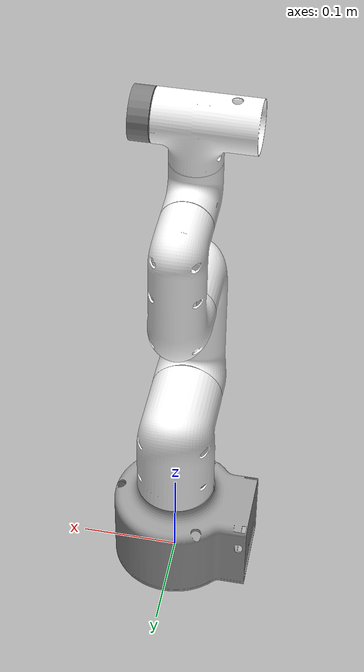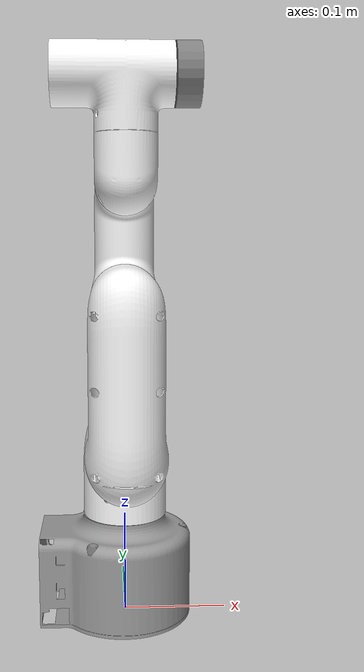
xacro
<?xml version='1.0' encoding='utf-8'?>
<robot xmlns:xacro="http://ros.org/wiki/xacro" name="mycobot_pro">
  <xacro:arg name="ros_namespace" default="mycobot_pro"/>
  <xacro:arg name="attach_to" default="world"/>

  <!-- load mycobot_pro robot -->
  <xacro:include filename="$(find mycobot_pro)/urdf/mycobot_robot_macro.xacro" />
  <xacro:mycobot_pro_robot_macro attach_to="$(arg attach_to)"/>

</robot>

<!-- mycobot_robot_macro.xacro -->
<robot xmlns:xacro="http://ros.org/wiki/xacro" name="mycobot_pro_robot" >
  <xacro:macro name="mycobot_pro_robot_macro" params="prefix:='' namespace:='xarm' limited:='false' effort_control:='false'
    velocity_control:='false' attach_to:='world' xyz:='0 0 0' rpy:='0 0 0' load_gazebo_plugin:='true' ">

    <!-- include mycobot relative macros: -->
    <xacro:include filename="$(find mycobot_pro)/urdf/320_urdf/mycobot_pro_320.xacro" />

    <!-- add one world link if no 'attach_to' specified  -->
    <xacro:if value="${attach_to == 'world'}">
      <link name="world" />
    </xacro:if>

    <joint name="world_joint" type="fixed">
      <parent link="${attach_to}" />
      <child link = "${prefix}arm_base" />
      <origin xyz="${xyz}" rpy="${rpy}" />
    </joint>

  </xacro:macro>
</robot>

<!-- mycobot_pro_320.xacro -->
<robot  xmlns:xacro="http://www.ros.org/wiki/xacro" name="mycobot_pro_robot" >

<xacro:property name="width" value=".2" />
  <link name="arm_base">
    <visual>
      <geometry>
       <mesh filename="package://mycobot_pro/urdf/320_urdf/base.dae"/>
      </geometry>
    <origin xyz = "0 0 0 " rpy = " 0 0 0"/>
    </visual>
    <collision>
      <origin xyz = "0 0 0.05 " rpy = " 0 0 0"/>
      <geometry>
        <cylinder length="0.102" radius="0.0725"/>
      </geometry>
    </collision>
  </link>

  <link name="link1">
    <visual>
      <geometry>
       <mesh filename="package://mycobot_pro/urdf/320_urdf/link1.dae"/>
      </geometry>
      <origin xyz = "0 0 0 " rpy = " 0 0 0"/>
    </visual>
    <collision>
      <origin xyz = "0 0 -0.02 " rpy = " 0 0 0"/>
      <geometry>
        <cylinder length="0.106" radius="0.043"/>
      </geometry>
    </collision>
  </link>

  <link name="link2">
    <visual>
      <geometry>
       <mesh filename="package://mycobot_pro/urdf/320_urdf/link2.dae"/>
      </geometry>
      <origin xyz = "0 0 0.0587 " rpy = " 0 0 3.1415926"/>
    </visual>
    <collision>
     <origin xyz = "0.04 0 0.095 " rpy = " 0 -1.5708 0"/>
      <geometry>
        <cylinder length="0.21" radius="0.036"/>
      </geometry>
    </collision>
  </link>

  <link name="link3">
    <visual>
      <geometry>
       <mesh filename="package://mycobot_pro/urdf/320_urdf/link3.dae"/>
      </geometry>
      <origin xyz = "0 0 0.038 " rpy = " 0 0 3.1415926"/>
    </visual>
    <collision>
      <origin xyz = "0.034 0 0 " rpy = " 0 -1.5708 0"/>
      <geometry>
        <cylinder length="0.119" radius="0.0305"/>
      </geometry>
    </collision>
  </link>

<link name="link4">
    <visual>
      <geometry>
       <mesh filename="package://mycobot_pro/urdf/320_urdf/link4.dae"/>
      </geometry>
      <origin xyz = "0 -0.001 0 " rpy = " 0 0 0"/>
    </visual>
    <collision>
      <origin xyz = "0.0 -0.012 0 " rpy = " 0 -1.5708 1.5708"/>
      <geometry>
        <cylinder length="0.085" radius="0.029"/>
      </geometry>
    </collision>
  </link>

  <link name="link5">
    <visual>
      <geometry>
       <mesh filename="package://mycobot_pro/urdf/320_urdf/link5.dae"/>
      </geometry>
      <origin xyz = "0 0.002  0 " rpy = " 0  0 3.1415926"/>
    </visual>
    <collision>
      <origin xyz = "0 -0.01 0 " rpy = " 1.5708 1.5708 0"/>
      <geometry>
        <cylinder length="0.0849" radius="0.029"/>
      </geometry>
    </collision>
  </link>

  <link name="link6">
    <visual>
      <geometry>
        <cylinder length="0.02" radius="0.026"/>
      </geometry>
      <material name = "grey">
        <color rgba = "0.5 0.5 0.5 1"/>
      </material>
    <origin xyz = "0 0 -0.01 " rpy = " 0 0 0"/>
    </visual>
       <collision>
      <origin xyz = "0.0 0 -0.01 " rpy = " 0 0 0"/>
      <geometry>
        <cylinder length="0.0225" radius="0.026"/>
      </geometry>
    </collision>
  </link>

  <joint name="joint2_to_joint1" type="revolute">
    <axis xyz="0 0 1"/>
    <limit effort = "1000.0" lower = "-3.14" upper = "3.14159" velocity = "0"/>
    <parent link="arm_base"/>
    <child link="link1"/>
    <origin xyz= "0 0 0.17846" rpy = "0 0 0"/>
  </joint>

  <joint name="joint3_to_joint2" type="revolute">
    <axis xyz="0 0 1"/>
    <limit effort = "1000.0" lower = "-3.14" upper = "3.14159" velocity = "0"/>
    <parent link="link1"/>
    <child link="link2"/>
    <origin xyz= "0 0  0" rpy = "0 -1.57080  1.57080"/>
  </joint>

  <joint name="joint4_to_joint3" type="revolute">
    <axis xyz=" 0 0 1"/>
    <limit effort = "1000.0" lower = "-3.14" upper = "3.14159" velocity = "0"/>
    <parent link="link2"/>
    <child link="link3"/>
    <origin xyz= "0.13635 0 0   " rpy = "0 0 0"/>
  </joint>

  <joint name="joint5_to_joint4" type="revolute">
    <axis xyz=" 0 0 1"/>
    <limit effort = "1000.0" lower = "-3.14" upper = "3.14159" velocity = "0"/>
    <parent link="link3"/>
    <child link="link4"/>
    <origin xyz= "0.1 0  0.090" rpy = "0 0 1.57080"/>
  </joint>

  <joint name="joint6_to_joint5" type="revolute">
    <axis xyz="0 0 1"/>
    <limit effort = "1000.0" lower = "-3.14" upper = "3.14159" velocity = "0"/>
    <parent link="link4"/>
    <child link="link5"/>
    <origin xyz= "0 -0.08515 0" rpy = "1.57080 -1.57080 0"/>
  </joint>

  <joint name="joint6output_to_joint6" type="revolute">
    <axis xyz="0 0 1"/>
    <limit effort = "1000.0" lower = "-3.14" upper = "3.14159" velocity = "0"/>
    <parent link="link5"/>
    <child link="link6"/>
    <origin xyz= "0 0.06 0" rpy = "-1.57080 0 0 "/>
  </joint>

</robot>
